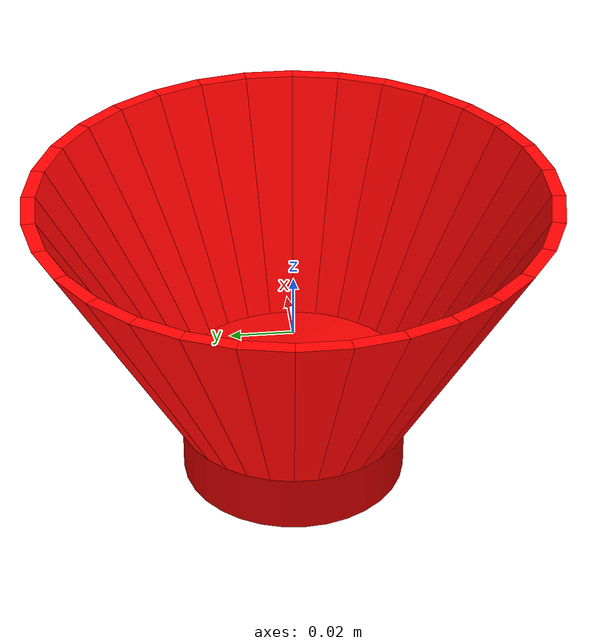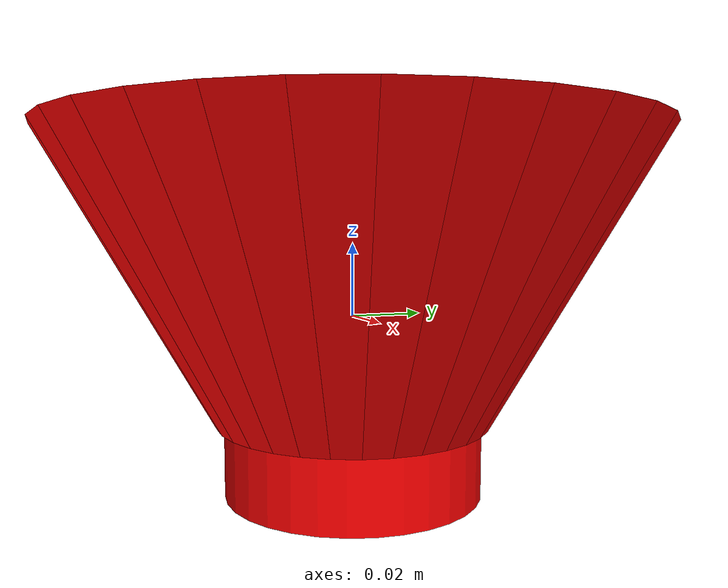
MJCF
<mujoco>
  <compiler angle="radian" />
  <compiler meshdir="bowl_small/stl/" />
  <asset>
      <mesh name="bowl_small_cone" file="bowl_small_cone.stl" />
      <mesh name="bowl_small_bottom" file="bowl_small_bottom.stl" />
      <mesh name="bowl_small_side" file="bowl_small_side.stl" />
  </asset>
  <worldbody>
      <body name="bowl" pos="0 0 0">
          <freejoint />
          <geom type="mesh" mesh="bowl_small_bottom" rgba="1 0 0 1" />
          <geom type="mesh" mesh="bowl_small_cone" rgba="1 0 0 1" />
          <geom type="mesh" euler="0 0 0" mesh="bowl_small_side" rgba="1 0 0 1" />
          <geom type="mesh" euler="0 0 0.19634954084936207" mesh="bowl_small_side" rgba="1 0 0 1" />
          <geom type="mesh" euler="0 0 0.39269908169872414" mesh="bowl_small_side" rgba="1 0 0 1" />
          <geom type="mesh" euler="0 0 0.5890486225480862" mesh="bowl_small_side" rgba="1 0 0 1" />
          <geom type="mesh" euler="0 0 0.7853981633974483" mesh="bowl_small_side" rgba="1 0 0 1" />
          <geom type="mesh" euler="0 0 0.9817477042468103" mesh="bowl_small_side" rgba="1 0 0 1" />
          <geom type="mesh" euler="0 0 1.1780972450961724" mesh="bowl_small_side" rgba="1 0 0 1" />
          <geom type="mesh" euler="0 0 1.3744467859455345" mesh="bowl_small_side" rgba="1 0 0 1" />
          <geom type="mesh" euler="0 0 1.5707963267948966" mesh="bowl_small_side" rgba="1 0 0 1" />
          <geom type="mesh" euler="0 0 1.7671458676442586" mesh="bowl_small_side" rgba="1 0 0 1" />
          <geom type="mesh" euler="0 0 1.9634954084936207" mesh="bowl_small_side" rgba="1 0 0 1" />
          <geom type="mesh" euler="0 0 2.1598449493429825" mesh="bowl_small_side" rgba="1 0 0 1" />
          <geom type="mesh" euler="0 0 2.356194490192345" mesh="bowl_small_side" rgba="1 0 0 1" />
          <geom type="mesh" euler="0 0 2.552544031041707" mesh="bowl_small_side" rgba="1 0 0 1" />
          <geom type="mesh" euler="0 0 2.748893571891069" mesh="bowl_small_side" rgba="1 0 0 1" />
          <geom type="mesh" euler="0 0 2.945243112740431" mesh="bowl_small_side" rgba="1 0 0 1" />
          <geom type="mesh" euler="0 0 3.141592653589793" mesh="bowl_small_side" rgba="1 0 0 1" />
          <geom type="mesh" euler="0 0 -2.945243112740431" mesh="bowl_small_side" rgba="1 0 0 1" />
          <geom type="mesh" euler="0 0 -2.748893571891069" mesh="bowl_small_side" rgba="1 0 0 1" />
          <geom type="mesh" euler="0 0 -2.552544031041707" mesh="bowl_small_side" rgba="1 0 0 1" />
          <geom type="mesh" euler="0 0 -2.356194490192345" mesh="bowl_small_side" rgba="1 0 0 1" />
          <geom type="mesh" euler="0 0 -2.1598449493429825" mesh="bowl_small_side" rgba="1 0 0 1" />
          <geom type="mesh" euler="0 0 -1.9634954084936207" mesh="bowl_small_side" rgba="1 0 0 1" />
          <geom type="mesh" euler="0 0 -1.7671458676442586" mesh="bowl_small_side" rgba="1 0 0 1" />
          <geom type="mesh" euler="0 0 -1.5707963267948966" mesh="bowl_small_side" rgba="1 0 0 1" />
          <geom type="mesh" euler="0 0 -1.3744467859455345" mesh="bowl_small_side" rgba="1 0 0 1" />
          <geom type="mesh" euler="0 0 -1.1780972450961724" mesh="bowl_small_side" rgba="1 0 0 1" />
          <geom type="mesh" euler="0 0 -0.9817477042468103" mesh="bowl_small_side" rgba="1 0 0 1" />
          <geom type="mesh" euler="0 0 -0.7853981633974483" mesh="bowl_small_side" rgba="1 0 0 1" />
          <geom type="mesh" euler="0 0 -0.5890486225480862" mesh="bowl_small_side" rgba="1 0 0 1" />
          <geom type="mesh" euler="0 0 -0.39269908169872414" mesh="bowl_small_side" rgba="1 0 0 1" />
          <geom type="mesh" euler="0 0 -0.19634954084936207" mesh="bowl_small_side" rgba="1 0 0 1" />
      </body>
  </worldbody>
</mujoco>
